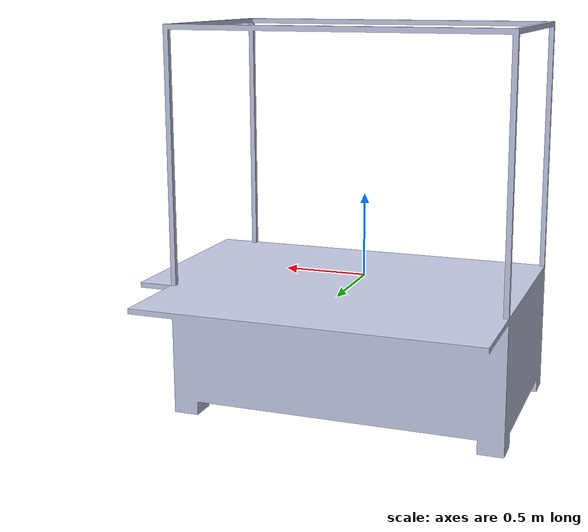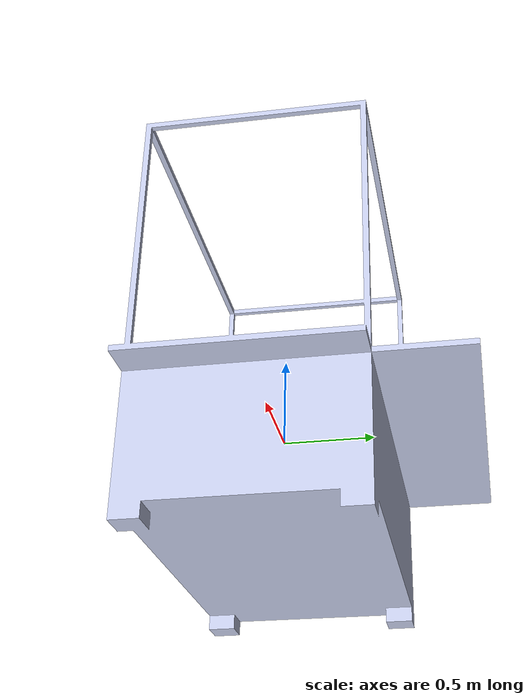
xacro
<?xml version="1.0" encoding="utf-8"?>
<robot name="table" xmlns:xacro="http://www.ros.org/wiki/xacro">
  <link name="table">
    <inertial>
      <origin xyz="0.0045671 0.014691 -0.33515" rpy="0 0 0" />
      <mass value="1718.4" />
      <inertia ixx="326.36" ixy="0.1153" ixz="-2.5125" iyy="674.86" iyz="8.08210000000001" izz="803.41" />
    </inertial>

    <visual>
      <origin xyz="0 0 0" rpy="1.5707963267949 0 0" />
      <geometry>
        <mesh
          filename="package://assembly_gazebo/urdfs/table/meshes/table.STL" />
      </geometry>
      <material name="">
        <color rgba="0.79216 0.81961 0.93333 1" />
      </material>
    </visual>

    <collision>
      <origin xyz="0 0 0" rpy="1.5707963267949 0 0" />
      <geometry>
        <mesh filename="package://assembly_gazebo/urdfs/table/meshes/table.STL" />
      </geometry>
    </collision>

  </link>

  <gazebo reference="table">
		<material>Gazebo/Orange</material>
	</gazebo>

</robot>
